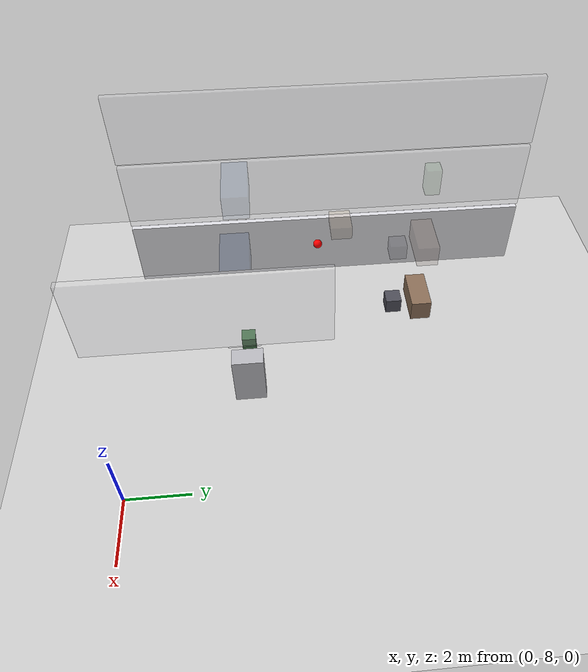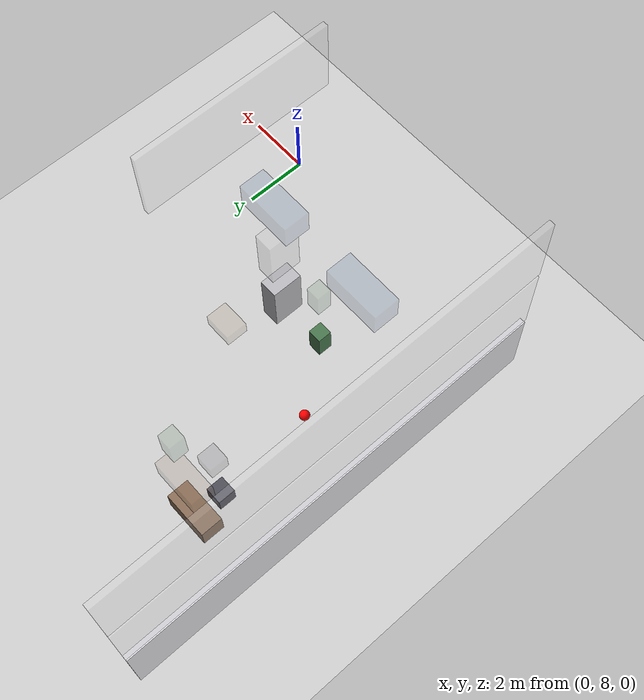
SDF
<sdf version="1.7">
 <world name="generated_world">
  <include><uri>model://sun</uri></include>
  <include><uri>model://ground_plane</uri></include>
  <model name="generated_building">
   <static>true</static>
   <link name="floor_0_room_0_west_wall">
    <pose>-9.4100 14.8650 1.2250 0.0000 0.0000 0.0000</pose>
    <collision name="floor_0_room_0_west_wall_collision">
     <geometry><box><size>0.1800 14.0300 2.4500</size></box></geometry>
    </collision>
    <visual name="floor_0_room_0_west_wall_visual">
     <geometry><box><size>0.1800 14.0300 2.4500</size></box></geometry>
     <material><ambient>0.86 0.86 0.88 1</ambient><diffuse>0.86 0.86 0.88 1</diffuse></material>
    </visual>
    <gravity>false</gravity>
   </link>
   <link name="floor_0_room_0_desk">
    <pose>-7.0000 17.9225 0.4500 0.0000 0.0000 0.0000</pose>
    <collision name="floor_0_room_0_desk_collision">
     <geometry><box><size>1.5000 0.7000 0.7500</size></box></geometry>
    </collision>
    <visual name="floor_0_room_0_desk_visual">
     <geometry><box><size>1.5000 0.7000 0.7500</size></box></geometry>
     <material><ambient>0.54 0.43 0.34 1</ambient><diffuse>0.54 0.43 0.34 1</diffuse></material>
    </visual>
    <gravity>false</gravity>
   </link>
   <link name="floor_0_room_0_chair">
    <pose>-7.0000 17.0225 0.2800 0.0000 0.0000 0.0000</pose>
    <collision name="floor_0_room_0_chair_collision">
     <geometry><box><size>0.5500 0.5500 0.5500</size></box></geometry>
    </collision>
    <visual name="floor_0_room_0_chair_visual">
     <geometry><box><size>0.5500 0.5500 0.5500</size></box></geometry>
     <material><ambient>0.30 0.30 0.34 1</ambient><diffuse>0.30 0.30 0.34 1</diffuse></material>
    </visual>
    <gravity>false</gravity>
   </link>
   <link name="floor_0_room_0_cabinet">
    <pose>-3.6000 11.8075 0.9000 0.0000 0.0000 0.0000</pose>
    <collision name="floor_0_room_0_cabinet_collision">
     <geometry><box><size>0.6000 1.0000 1.8000</size></box></geometry>
    </collision>
    <visual name="floor_0_room_0_cabinet_visual">
     <geometry><box><size>0.6000 1.0000 1.8000</size></box></geometry>
     <material><ambient>0.72 0.72 0.74 1</ambient><diffuse>0.72 0.72 0.74 1</diffuse></material>
    </visual>
    <gravity>false</gravity>
   </link>
   <link name="floor_0_room_0_planter">
    <pose>-5.3000 11.8075 0.4500 0.0000 0.0000 0.0000</pose>
    <collision name="floor_0_room_0_planter_collision">
     <geometry><box><size>0.4500 0.4500 0.9000</size></box></geometry>
    </collision>
    <visual name="floor_0_room_0_planter_visual">
     <geometry><box><size>0.4500 0.4500 0.9000</size></box></geometry>
     <material><ambient>0.28 0.46 0.30 1</ambient><diffuse>0.28 0.46 0.30 1</diffuse></material>
    </visual>
    <gravity>false</gravity>
   </link>
   <link name="floor_1_room_0_west_wall">
    <pose>-9.4100 14.8650 3.8250 0.0000 0.0000 0.0000</pose>
    <collision name="floor_1_room_0_west_wall_collision">
     <geometry><box><size>0.1800 14.0300 2.4500</size></box></geometry>
    </collision>
    <visual name="floor_1_room_0_west_wall_visual">
     <geometry><box><size>0.1800 14.0300 2.4500</size></box></geometry>
     <material><ambient>0.86 0.86 0.88 1</ambient><diffuse>0.86 0.86 0.88 1</diffuse></material>
     <transparency>0.80</transparency>
    </visual>
    <gravity>false</gravity>
   </link>
   <link name="floor_1_room_0_desk">
    <pose>-7.0000 17.9225 3.0500 0.0000 0.0000 0.0000</pose>
    <collision name="floor_1_room_0_desk_collision">
     <geometry><box><size>1.5000 0.7000 0.7500</size></box></geometry>
    </collision>
    <visual name="floor_1_room_0_desk_visual">
     <geometry><box><size>1.5000 0.7000 0.7500</size></box></geometry>
     <material><ambient>0.54 0.43 0.34 1</ambient><diffuse>0.54 0.43 0.34 1</diffuse></material>
     <transparency>0.80</transparency>
    </visual>
    <gravity>false</gravity>
   </link>
   <link name="floor_1_room_0_chair">
    <pose>-7.0000 17.0225 2.8800 0.0000 0.0000 0.0000</pose>
    <collision name="floor_1_room_0_chair_collision">
     <geometry><box><size>0.5500 0.5500 0.5500</size></box></geometry>
    </collision>
    <visual name="floor_1_room_0_chair_visual">
     <geometry><box><size>0.5500 0.5500 0.5500</size></box></geometry>
     <material><ambient>0.30 0.30 0.34 1</ambient><diffuse>0.30 0.30 0.34 1</diffuse></material>
     <transparency>0.80</transparency>
    </visual>
    <gravity>false</gravity>
   </link>
   <link name="floor_1_room_0_cabinet">
    <pose>-3.6000 11.8075 3.5000 0.0000 0.0000 0.0000</pose>
    <collision name="floor_1_room_0_cabinet_collision">
     <geometry><box><size>0.6000 1.0000 1.8000</size></box></geometry>
    </collision>
    <visual name="floor_1_room_0_cabinet_visual">
     <geometry><box><size>0.6000 1.0000 1.8000</size></box></geometry>
     <material><ambient>0.72 0.72 0.74 1</ambient><diffuse>0.72 0.72 0.74 1</diffuse></material>
     <transparency>0.80</transparency>
    </visual>
    <gravity>false</gravity>
   </link>
   <link name="floor_1_room_0_planter">
    <pose>-5.3000 11.8075 3.0500 0.0000 0.0000 0.0000</pose>
    <collision name="floor_1_room_0_planter_collision">
     <geometry><box><size>0.4500 0.4500 0.9000</size></box></geometry>
    </collision>
    <visual name="floor_1_room_0_planter_visual">
     <geometry><box><size>0.4500 0.4500 0.9000</size></box></geometry>
     <material><ambient>0.28 0.46 0.30 1</ambient><diffuse>0.28 0.46 0.30 1</diffuse></material>
     <transparency>0.80</transparency>
    </visual>
    <gravity>false</gravity>
   </link>
   <link name="floor_2_room_0_corridor_wall_lower">
    <pose>-1.1900 11.0575 6.4250 0.0000 0.0000 0.0000</pose>
    <collision name="floor_2_room_0_corridor_wall_lower_collision">
     <geometry><box><size>0.1800 6.4150 2.4500</size></box></geometry>
    </collision>
    <visual name="floor_2_room_0_corridor_wall_lower_visual">
     <geometry><box><size>0.1800 6.4150 2.4500</size></box></geometry>
     <material><ambient>0.86 0.86 0.88 1</ambient><diffuse>0.86 0.86 0.88 1</diffuse></material>
     <transparency>0.80</transparency>
    </visual>
    <gravity>false</gravity>
   </link>
   <link name="floor_2_room_0_west_wall">
    <pose>-9.4100 14.8650 6.4250 0.0000 0.0000 0.0000</pose>
    <collision name="floor_2_room_0_west_wall_collision">
     <geometry><box><size>0.1800 14.0300 2.4500</size></box></geometry>
    </collision>
    <visual name="floor_2_room_0_west_wall_visual">
     <geometry><box><size>0.1800 14.0300 2.4500</size></box></geometry>
     <material><ambient>0.86 0.86 0.88 1</ambient><diffuse>0.86 0.86 0.88 1</diffuse></material>
     <transparency>0.80</transparency>
    </visual>
    <gravity>false</gravity>
   </link>
   <link name="floor_2_room_0_sofa_a">
    <pose>-7.0000 11.8075 5.6500 0.0000 0.0000 0.0000</pose>
    <collision name="floor_2_room_0_sofa_a_collision">
     <geometry><box><size>1.8000 0.8000 0.8000</size></box></geometry>
    </collision>
    <visual name="floor_2_room_0_sofa_a_visual">
     <geometry><box><size>1.8000 0.8000 0.8000</size></box></geometry>
     <material><ambient>0.24 0.36 0.54 1</ambient><diffuse>0.24 0.36 0.54 1</diffuse></material>
     <transparency>0.80</transparency>
    </visual>
    <gravity>false</gravity>
   </link>
   <link name="floor_2_room_0_sofa_b">
    <pose>-3.6000 11.8075 5.6500 0.0000 0.0000 3.1400</pose>
    <collision name="floor_2_room_0_sofa_b_collision">
     <geometry><box><size>1.8000 0.8000 0.8000</size></box></geometry>
    </collision>
    <visual name="floor_2_room_0_sofa_b_visual">
     <geometry><box><size>1.8000 0.8000 0.8000</size></box></geometry>
     <material><ambient>0.24 0.36 0.54 1</ambient><diffuse>0.24 0.36 0.54 1</diffuse></material>
     <transparency>0.80</transparency>
    </visual>
    <gravity>false</gravity>
   </link>
   <link name="floor_2_room_0_coffee_table">
    <pose>-5.3000 14.8650 5.4500 0.0000 0.0000 0.0000</pose>
    <collision name="floor_2_room_0_coffee_table_collision">
     <geometry><box><size>0.8000 0.6000 0.4000</size></box></geometry>
    </collision>
    <visual name="floor_2_room_0_coffee_table_visual">
     <geometry><box><size>0.8000 0.6000 0.4000</size></box></geometry>
     <material><ambient>0.60 0.48 0.34 1</ambient><diffuse>0.60 0.48 0.34 1</diffuse></material>
     <transparency>0.80</transparency>
    </visual>
    <gravity>false</gravity>
   </link>
   <link name="floor_2_room_0_planter">
    <pose>-7.0000 17.9225 5.6500 0.0000 0.0000 0.0000</pose>
    <collision name="floor_2_room_0_planter_collision">
     <geometry><box><size>0.4500 0.4500 0.9000</size></box></geometry>
    </collision>
    <visual name="floor_2_room_0_planter_visual">
     <geometry><box><size>0.4500 0.4500 0.9000</size></box></geometry>
     <material><ambient>0.28 0.46 0.30 1</ambient><diffuse>0.28 0.46 0.30 1</diffuse></material>
     <transparency>0.80</transparency>
    </visual>
    <gravity>false</gravity>
   </link>
  </model>
  <model name="danger_red_sphere_01">
   <static>true</static>
   <pose>-7.592193 14.362380 2.750000 0.000000 0.000000 0.000000</pose>
   <link name="link">
    <collision name="collision"><geometry><sphere><radius>0.150</radius></sphere></geometry></collision>
    <visual name="visual">
     <geometry><sphere><radius>0.150</radius></sphere></geometry>
     <material><ambient>1.0 0.0 0.0 1.0</ambient><diffuse>1.0 0.0 0.0 1.0</diffuse></material>
    </visual>
   </link>
  </model>
 </world>
</sdf>
